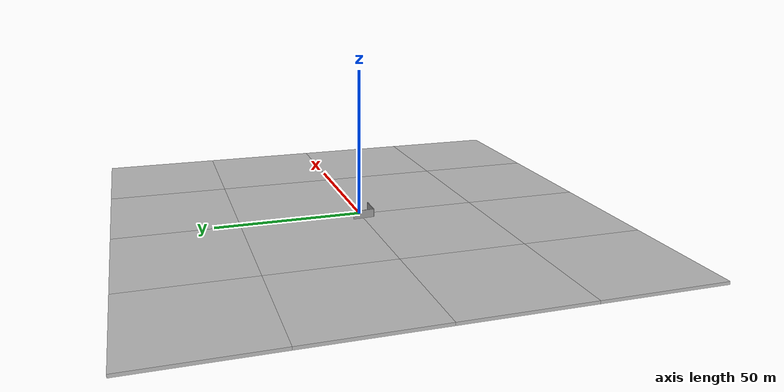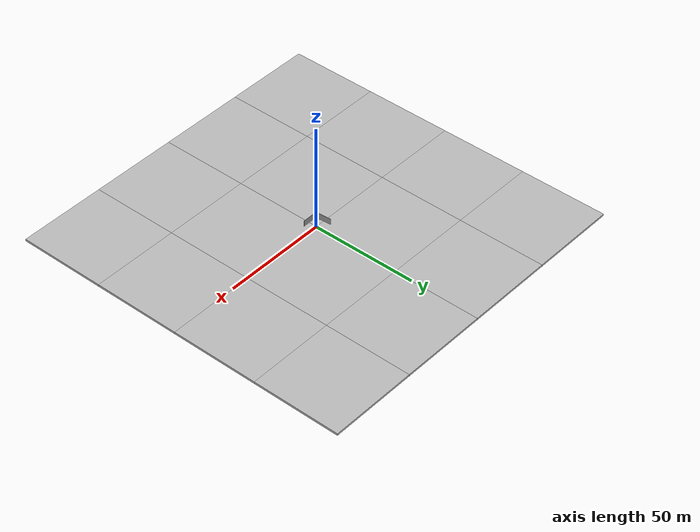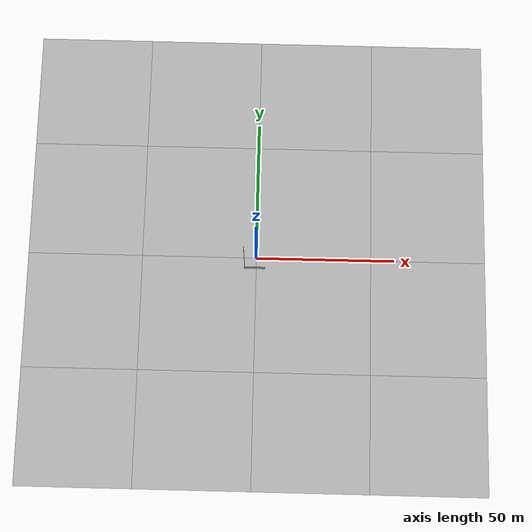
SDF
<sdf version="1.7">
 <world name="default">
  <model name="ground_plane">
   <static>1</static>
   <link name="link">
    <collision name="collision">
     <geometry><plane><normal>0 0 1</normal><size>5000 5000</size></plane></geometry>
     <surface><friction><ode><mu>1</mu><mu2>1</mu2></ode></friction></surface>
    </collision>
   </link>
  </model>
  <model name="map_satellite_29.72055_-95.40016_150_150">
   <static>1</static>
   <link name="link">
    <collision name="collision">
     <pose>0 0 -0.5 0 -0 0</pose>
     <geometry><box><size>165.955 165.955 1</size></box></geometry>
    </collision>
    <visual name="visual0_0">
     <pose>-62.2331 62.2331 -0.5 0 -0 1.5708</pose>
     <geometry><box><size>41.4888 41.4888 1</size></box></geometry>
     <material>
      <script>
       <uri>model://map_satellite_29.72055_-95.40016_150_150/materials/scripts</uri>
       <uri>model://map_satellite_29.72055_-95.40016_150_150/materials/textures</uri>
       <name>map_satellite_29.72055_-95.40016_150_150/0_0</name>
      </script>
     </material>
    </visual>
    <visual name="visual0_1">
     <pose>-20.7444 62.2331 -0.5 0 -0 1.5708</pose>
     <geometry><box><size>41.4888 41.4888 1</size></box></geometry>
     <material>
      <script>
       <uri>model://map_satellite_29.72055_-95.40016_150_150/materials/scripts</uri>
       <uri>model://map_satellite_29.72055_-95.40016_150_150/materials/textures</uri>
       <name>map_satellite_29.72055_-95.40016_150_150/0_1</name>
      </script>
     </material>
    </visual>
    <visual name="visual0_2">
     <pose>20.7444 62.2331 -0.5 0 -0 1.5708</pose>
     <geometry><box><size>41.4888 41.4888 1</size></box></geometry>
     <material>
      <script>
       <uri>model://map_satellite_29.72055_-95.40016_150_150/materials/scripts</uri>
       <uri>model://map_satellite_29.72055_-95.40016_150_150/materials/textures</uri>
       <name>map_satellite_29.72055_-95.40016_150_150/0_2</name>
      </script>
     </material>
    </visual>
    <visual name="visual0_3">
     <pose>62.2331 62.2331 -0.5 0 -0 1.5708</pose>
     <geometry><box><size>41.4888 41.4888 1</size></box></geometry>
     <material>
      <script>
       <uri>model://map_satellite_29.72055_-95.40016_150_150/materials/scripts</uri>
       <uri>model://map_satellite_29.72055_-95.40016_150_150/materials/textures</uri>
       <name>map_satellite_29.72055_-95.40016_150_150/0_3</name>
      </script>
     </material>
    </visual>
    <visual name="visual1_0">
     <pose>-62.2331 20.7444 -0.5 0 -0 1.5708</pose>
     <geometry><box><size>41.4888 41.4888 1</size></box></geometry>
     <material>
      <script>
       <uri>model://map_satellite_29.72055_-95.40016_150_150/materials/scripts</uri>
       <uri>model://map_satellite_29.72055_-95.40016_150_150/materials/textures</uri>
       <name>map_satellite_29.72055_-95.40016_150_150/1_0</name>
      </script>
     </material>
    </visual>
    <visual name="visual1_1">
     <pose>-20.7444 20.7444 -0.5 0 -0 1.5708</pose>
     <geometry><box><size>41.4888 41.4888 1</size></box></geometry>
     <material>
      <script>
       <uri>model://map_satellite_29.72055_-95.40016_150_150/materials/scripts</uri>
       <uri>model://map_satellite_29.72055_-95.40016_150_150/materials/textures</uri>
       <name>map_satellite_29.72055_-95.40016_150_150/1_1</name>
      </script>
     </material>
    </visual>
    <visual name="visual1_2">
     <pose>20.7444 20.7444 -0.5 0 -0 1.5708</pose>
     <geometry><box><size>41.4888 41.4888 1</size></box></geometry>
     <material>
      <script>
       <uri>model://map_satellite_29.72055_-95.40016_150_150/materials/scripts</uri>
       <uri>model://map_satellite_29.72055_-95.40016_150_150/materials/textures</uri>
       <name>map_satellite_29.72055_-95.40016_150_150/1_2</name>
      </script>
     </material>
    </visual>
    <visual name="visual1_3">
     <pose>62.2331 20.7444 -0.5 0 -0 1.5708</pose>
     <geometry><box><size>41.4888 41.4888 1</size></box></geometry>
     <material>
      <script>
       <uri>model://map_satellite_29.72055_-95.40016_150_150/materials/scripts</uri>
       <uri>model://map_satellite_29.72055_-95.40016_150_150/materials/textures</uri>
       <name>map_satellite_29.72055_-95.40016_150_150/1_3</name>
      </script>
     </material>
    </visual>
    <visual name="visual2_0">
     <pose>-62.2331 -20.7444 -0.5 0 -0 1.5708</pose>
     <geometry><box><size>41.4888 41.4888 1</size></box></geometry>
     <material>
      <script>
       <uri>model://map_satellite_29.72055_-95.40016_150_150/materials/scripts</uri>
       <uri>model://map_satellite_29.72055_-95.40016_150_150/materials/textures</uri>
       <name>map_satellite_29.72055_-95.40016_150_150/2_0</name>
      </script>
     </material>
    </visual>
    <visual name="visual2_1">
     <pose>-20.7444 -20.7444 -0.5 0 -0 1.5708</pose>
     <geometry><box><size>41.4888 41.4888 1</size></box></geometry>
     <material>
      <script>
       <uri>model://map_satellite_29.72055_-95.40016_150_150/materials/scripts</uri>
       <uri>model://map_satellite_29.72055_-95.40016_150_150/materials/textures</uri>
       <name>map_satellite_29.72055_-95.40016_150_150/2_1</name>
      </script>
     </material>
    </visual>
    <visual name="visual2_2">
     <pose>20.7444 -20.7444 -0.5 0 -0 1.5708</pose>
     <geometry><box><size>41.4888 41.4888 1</size></box></geometry>
     <material>
      <script>
       <uri>model://map_satellite_29.72055_-95.40016_150_150/materials/scripts</uri>
       <uri>model://map_satellite_29.72055_-95.40016_150_150/materials/textures</uri>
       <name>map_satellite_29.72055_-95.40016_150_150/2_2</name>
      </script>
     </material>
    </visual>
    <visual name="visual2_3">
     <pose>62.2331 -20.7444 -0.5 0 -0 1.5708</pose>
     <geometry><box><size>41.4888 41.4888 1</size></box></geometry>
     <material>
      <script>
       <uri>model://map_satellite_29.72055_-95.40016_150_150/materials/scripts</uri>
       <uri>model://map_satellite_29.72055_-95.40016_150_150/materials/textures</uri>
       <name>map_satellite_29.72055_-95.40016_150_150/2_3</name>
      </script>
     </material>
    </visual>
    <visual name="visual3_0">
     <pose>-62.2331 -62.2331 -0.5 0 -0 1.5708</pose>
     <geometry><box><size>41.4888 41.4888 1</size></box></geometry>
     <material>
      <script>
       <uri>model://map_satellite_29.72055_-95.40016_150_150/materials/scripts</uri>
       <uri>model://map_satellite_29.72055_-95.40016_150_150/materials/textures</uri>
       <name>map_satellite_29.72055_-95.40016_150_150/3_0</name>
      </script>
     </material>
    </visual>
    <visual name="visual3_1">
     <pose>-20.7444 -62.2331 -0.5 0 -0 1.5708</pose>
     <geometry><box><size>41.4888 41.4888 1</size></box></geometry>
     <material>
      <script>
       <uri>model://map_satellite_29.72055_-95.40016_150_150/materials/scripts</uri>
       <uri>model://map_satellite_29.72055_-95.40016_150_150/materials/textures</uri>
       <name>map_satellite_29.72055_-95.40016_150_150/3_1</name>
      </script>
     </material>
    </visual>
    <visual name="visual3_2">
     <pose>20.7444 -62.2331 -0.5 0 -0 1.5708</pose>
     <geometry><box><size>41.4888 41.4888 1</size></box></geometry>
     <material>
      <script>
       <uri>model://map_satellite_29.72055_-95.40016_150_150/materials/scripts</uri>
       <uri>model://map_satellite_29.72055_-95.40016_150_150/materials/textures</uri>
       <name>map_satellite_29.72055_-95.40016_150_150/3_2</name>
      </script>
     </material>
    </visual>
    <visual name="visual3_3">
     <pose>62.2331 -62.2331 -0.5 0 -0 1.5708</pose>
     <geometry><box><size>41.4888 41.4888 1</size></box></geometry>
     <material>
      <script>
       <uri>model://map_satellite_29.72055_-95.40016_150_150/materials/scripts</uri>
       <uri>model://map_satellite_29.72055_-95.40016_150_150/materials/textures</uri>
       <name>map_satellite_29.72055_-95.40016_150_150/3_3</name>
      </script>
     </material>
    </visual>
   </link>
  </model>
  <model name="grey_wall">
   <static>1</static>
   <link name="link">
    <pose>0 0 1.4 0 -0 0</pose>
    <collision name="collision"><geometry><box><size>7.5 0.2 2.8</size></box></geometry></collision>
    <visual name="visual">
     <cast_shadows>0</cast_shadows>
     <geometry><box><size>7.5 0.2 2.8</size></box></geometry>
     <material>
      <script>
       <uri>model://grey_wall/materials/scripts</uri>
       <uri>model://grey_wall/materials/textures</uri>
       <name>vrc/grey_wall</name>
      </script>
     </material>
    </visual>
   </link>
   <pose>-0.563044 -3.83094 0 0 -0 0</pose>
  </model>
  <model name="grey_wall_clone_0">
   <static>1</static>
   <link name="link">
    <pose>0 0 1.4 0 -0 0</pose>
    <collision name="collision"><geometry><box><size>7.5 0.2 2.8</size></box></geometry></collision>
    <visual name="visual">
     <cast_shadows>0</cast_shadows>
     <geometry><box><size>7.5 0.2 2.8</size></box></geometry>
     <material>
      <script>
       <uri>model://grey_wall/materials/scripts</uri>
       <uri>model://grey_wall/materials/textures</uri>
       <name>vrc/grey_wall</name>
      </script>
     </material>
    </visual>
   </link>
   <pose>-4.50856 -0.181631 -0 0 0 -1.48635</pose>
  </model>
 </world>
</sdf>
